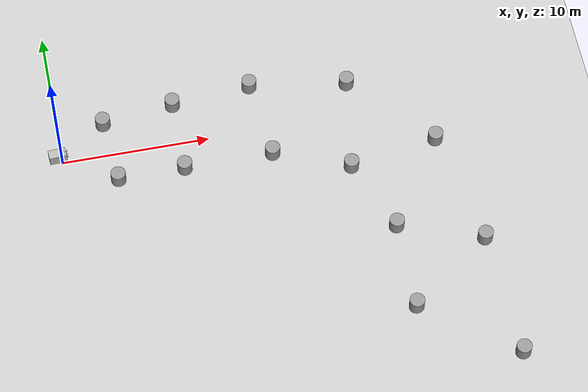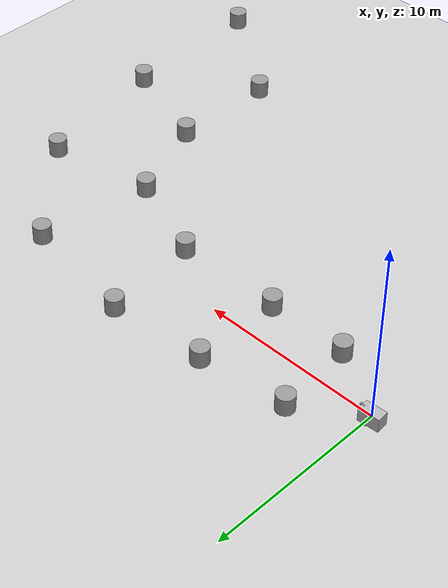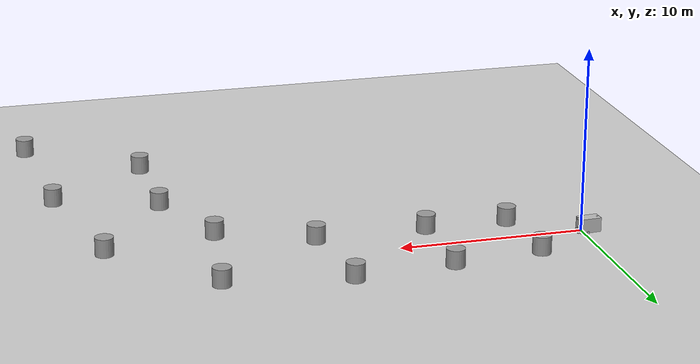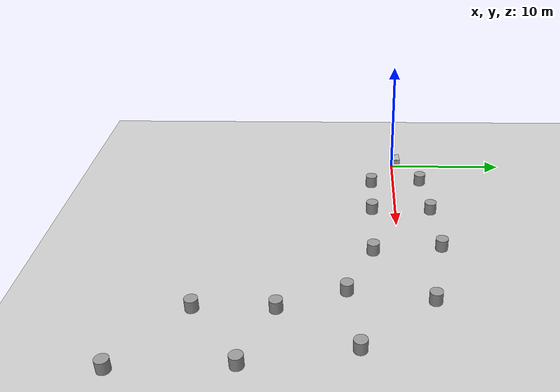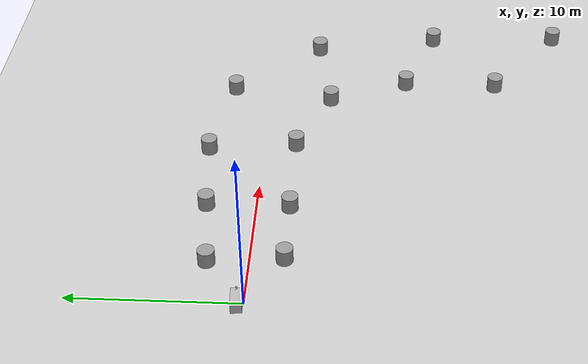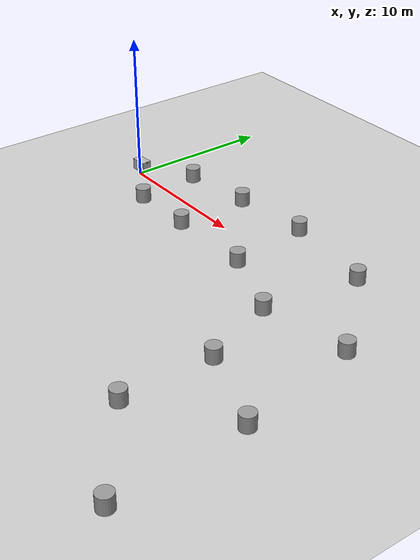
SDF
<sdf version="1.7">
 <world name="default">
  <light name="sun" type="directional">
   <pose>0 0 10 0 -0 0</pose>
   <diffuse>0.8 0.8 0.8 1</diffuse>
   <specular>0.2 0.2 0.2 1</specular>
   <attenuation>
    <range>1000</range>
    <constant>0.9</constant>
    <linear>0.01</linear>
    <quadratic>0.001</quadratic>
   </attenuation>
   <direction>-0.5 0.1 -0.9</direction>
   <spot><inner_angle>0</inner_angle><outer_angle>0</outer_angle><falloff>0</falloff></spot>
  </light>
  <model name="ground_plane">
   <static>1</static>
   <link name="link">
    <collision name="collision">
     <geometry><plane><normal>0 0 1</normal><size>100 100</size></plane></geometry>
     <surface>
      <contact><collide_bitmask>65535</collide_bitmask></contact>
      <friction><ode><mu>100</mu><mu2>50</mu2></ode></friction>
     </surface>
    </collision>
    <visual name="visual">
     <cast_shadows>0</cast_shadows>
     <geometry><plane><normal>0 0 1</normal><size>100 100</size></plane></geometry>
     <material>
      <script><uri>file://media/materials/scripts/gazebo.material</uri><name>Gazebo/Grey</name></script>
     </material>
    </visual>
   </link>
  </model>
  <gravity>0 0 -9.8</gravity>
  <magnetic_field>6e-06 2.3e-05 -4.2e-05</magnetic_field>
  <atmosphere type="adiabatic"/>
  <physics type="ode">
   <max_step_size>0.001</max_step_size>
   <real_time_factor>1</real_time_factor>
   <real_time_update_rate>1000</real_time_update_rate>
  </physics>
  <scene><ambient>0.4 0.4 0.4 1</ambient><background>0.7 0.7 0.7 1</background><shadows>1</shadows></scene>
  <spherical_coordinates>
   <surface_model>EARTH_WGS84</surface_model>
   <latitude_deg>0</latitude_deg>
   <longitude_deg>0</longitude_deg>
   <elevation>0</elevation>
   <heading_deg>0</heading_deg>
  </spherical_coordinates>
  <model name="hermes">
   <link name="base_link">
    <inertial>
     <pose>1.9e-05 0 0 0 -0 0</pose>
     <mass>1.00003</mass>
     <inertia>
      <ixx>0.0150053</ixx>
      <ixy>0</ixy>
      <ixz>-1.2148e-07</ixz>
      <iyy>0.037517</iyy>
      <iyz>0</iyz>
      <izz>0.0375151</izz>
     </inertia>
    </inertial>
    <collision name="base_link_collision"><geometry><box><size>0.6 0.3 0.3</size></box></geometry></collision>
    <collision name="base_link_fixed_joint_lump__camera_link_left_collision_1">
     <pose>0.630975 0.1 -0.180747 0 -0 0</pose>
     <geometry><box><size>0.1 0.1 0.1</size></box></geometry>
    </collision>
    <collision name="base_link_fixed_joint_lump__camera_link_right_collision_2">
     <pose>0.630975 -0.1 -0.180747 0 -0 0</pose>
     <geometry><box><size>0.1 0.1 0.1</size></box></geometry>
    </collision>
    <collision name="base_link_fixed_joint_lump__lidar_link_collision_3">
     <pose>0.630975 0 0.380747 0 -0 0</pose>
     <geometry><box><size>0.1 0.1 0.1</size></box></geometry>
    </collision>
    <visual name="base_link_visual"><geometry><box><size>1.16195 0.651 0.77596</size></box></geometry></visual>
    <visual name="base_link_fixed_joint_lump__camera_link_left_visual_1">
     <pose>0.630975 0.1 -0.180747 0 -0 0</pose>
     <geometry><box><size>0.1 0.1 0.1</size></box></geometry>
    </visual>
    <visual name="base_link_fixed_joint_lump__camera_link_right_visual_2">
     <pose>0.630975 -0.1 -0.180747 0 -0 0</pose>
     <geometry><box><size>0.1 0.1 0.1</size></box></geometry>
    </visual>
    <visual name="base_link_fixed_joint_lump__lidar_link_visual_3">
     <pose>0.630975 0 0.380747 0 -0 0</pose>
     <geometry><box><size>0.1 0.1 0.1</size></box></geometry>
    </visual>
    <sensor name="stereo_camera" type="multicamera">
     <update_rate>30</update_rate>
     <camera name="left">
      <horizontal_fov>1.39626</horizontal_fov>
      <image><width>800</width><height>800</height><format>R8G8B8</format></image>
      <clip><near>0.02</near><far>300</far></clip>
      <noise><type>gaussian</type><mean>0</mean><stddev>0.007</stddev></noise>
     </camera>
     <camera name="right">
      <pose>0 -0.07 0 0 -0 0</pose>
      <horizontal_fov>1.39626</horizontal_fov>
      <image><width>800</width><height>800</height><format>R8G8B8</format></image>
      <clip><near>0.02</near><far>300</far></clip>
      <noise><type>gaussian</type><mean>0</mean><stddev>0.007</stddev></noise>
     </camera>
     <plugin name="stereo_camera_controller" filename="libgazebo_ros_multicamera.so">
      <alwaysOn>1</alwaysOn>
      <updateRate>0.0</updateRate>
      <cameraName>stereo_camera</cameraName>
      <imageTopicName>image_raw</imageTopicName>
      <cameraInfoTopicName>camera_info</cameraInfoTopicName>
      <frameName>left_camera_optical_frame</frameName>
      <hackBaseline>0.07</hackBaseline>
      <distortionK1>0.0</distortionK1>
      <distortionK2>0.0</distortionK2>
      <distortionK3>0.0</distortionK3>
      <distortionT1>0.0</distortionT1>
      <distortionT2>0.0</distortionT2>
      <robotNamespace>/</robotNamespace>
     </plugin>
     <pose>0.630975 0 -0.180747 0 -0 0</pose>
    </sensor>
    <sensor name="head_lidar_sensor" type="ray">
     <visualize>1</visualize>
     <update_rate>25</update_rate>
     <ray>
      <scan>
       <horizontal>
        <samples>720</samples>
        <resolution>1</resolution>
        <min_angle>-2.35619</min_angle>
        <max_angle>2.35619</max_angle>
       </horizontal>
       <vertical><samples>1</samples><min_angle>0</min_angle><max_angle>0</max_angle></vertical>
      </scan>
      <range><min>0.5</min><max>20</max><resolution>0.001</resolution></range>
     </ray>
     <plugin name="gazebo_ros_head_hokuyo_controller" filename="libgazebo_ros_laser.so">
      <topicName>/scan</topicName>
      <frameName>lidar_link</frameName>
      <robotNamespace>/</robotNamespace>
     </plugin>
     <pose>0.630975 0 0.380747 0 -0 0</pose>
    </sensor>
   </link>
   <joint name="back_caster_joint" type="revolute">
    <pose relative_to="base_link">-0.491695 0 0 0 -0 0</pose>
    <parent>base_link</parent>
    <child>back_caster</child>
    <axis>
     <xyz>0 0 1</xyz>
     <limit><lower>-1e+16</lower><upper>1e+16</upper></limit>
     <dynamics><spring_reference>0</spring_reference><spring_stiffness>0</spring_stiffness></dynamics>
    </axis>
   </joint>
   <link name="back_caster">
    <pose relative_to="back_caster_joint">0 0 0 0 -0 0</pose>
    <inertial>
     <mass>0.1</mass>
     <inertia><ixx>0.00083</ixx><ixy>0</ixy><ixz>0</ixz><iyy>0.00083</iyy><iyz>0</iyz><izz>0.000167</izz></inertia>
    </inertial>
    <collision name="back_caster_collision">
     <geometry><box><size>0.1 0.1 0.77596</size></box></geometry>
    </collision>
    <visual name="back_caster_visual"><geometry><box><size>0.1 0.1 0.77596</size></box></geometry></visual>
   </link>
   <joint name="back_wheel_joint" type="revolute">
    <pose relative_to="back_caster">0.05 0 -0.38798 -1.5708 0 0</pose>
    <parent>back_caster</parent>
    <child>back_wheel</child>
    <axis>
     <xyz>0 0 1</xyz>
     <limit><lower>-1e+16</lower><upper>1e+16</upper></limit>
     <dynamics><spring_reference>0</spring_reference><spring_stiffness>0</spring_stiffness></dynamics>
    </axis>
   </joint>
   <link name="back_wheel">
    <pose relative_to="back_wheel_joint">0 0 0 0 -0 0</pose>
    <inertial>
     <mass>0.1</mass>
     <inertia>
      <ixx>5.1458e-05</ixx>
      <ixy>0</ixy>
      <ixz>0</ixz>
      <iyy>5.1458e-05</iyy>
      <iyz>0</iyz>
      <izz>6.125e-05</izz>
     </inertia>
    </inertial>
    <collision name="back_wheel_collision">
     <geometry><cylinder><length>0.05</length><radius>0.1</radius></cylinder></geometry>
    </collision>
    <visual name="back_wheel_visual">
     <geometry><cylinder><length>0.05</length><radius>0.1</radius></cylinder></geometry>
    </visual>
   </link>
   <joint name="front_caster_joint" type="revolute">
    <pose relative_to="base_link">0.491695 0 0 0 -0 0</pose>
    <parent>base_link</parent>
    <child>front_caster</child>
    <axis>
     <xyz>0 0 1</xyz>
     <limit><lower>-1e+16</lower><upper>1e+16</upper></limit>
     <dynamics><spring_reference>0</spring_reference><spring_stiffness>0</spring_stiffness></dynamics>
    </axis>
   </joint>
   <link name="front_caster">
    <pose relative_to="front_caster_joint">0 0 0 0 -0 0</pose>
    <inertial>
     <mass>0.1</mass>
     <inertia><ixx>0.00083</ixx><ixy>0</ixy><ixz>0</ixz><iyy>0.00083</iyy><iyz>0</iyz><izz>0.000167</izz></inertia>
    </inertial>
    <collision name="front_caster_collision">
     <geometry><box><size>0.1 0.1 0.77596</size></box></geometry>
    </collision>
    <visual name="front_caster_visual"><geometry><box><size>0.1 0.1 0.77596</size></box></geometry></visual>
   </link>
   <joint name="front_wheel_joint" type="revolute">
    <pose relative_to="front_caster">0.05 0 -0.38798 -1.5708 0 0</pose>
    <parent>front_caster</parent>
    <child>front_wheel</child>
    <axis>
     <xyz>0 0 1</xyz>
     <limit><lower>-1e+16</lower><upper>1e+16</upper></limit>
     <dynamics><spring_reference>0</spring_reference><spring_stiffness>0</spring_stiffness></dynamics>
    </axis>
   </joint>
   <link name="front_wheel">
    <pose relative_to="front_wheel_joint">0 0 0 0 -0 0</pose>
    <inertial>
     <mass>0.1</mass>
     <inertia>
      <ixx>5.1458e-05</ixx>
      <ixy>0</ixy>
      <ixz>0</ixz>
      <iyy>5.1458e-05</iyy>
      <iyz>0</iyz>
      <izz>6.125e-05</izz>
     </inertia>
    </inertial>
    <collision name="front_wheel_collision">
     <geometry><cylinder><length>0.05</length><radius>0.1</radius></cylinder></geometry>
    </collision>
    <visual name="front_wheel_visual">
     <geometry><cylinder><length>0.05</length><radius>0.1</radius></cylinder></geometry>
    </visual>
   </link>
   <joint name="left_wheel_joint" type="revolute">
    <pose relative_to="base_link">0.159795 0.3005 -0.38978 -1.5708 0 0</pose>
    <parent>base_link</parent>
    <child>left_wheel</child>
    <axis>
     <xyz>0 0 1</xyz>
     <limit><lower>-1e+16</lower><upper>1e+16</upper></limit>
     <dynamics><spring_reference>0</spring_reference><spring_stiffness>0</spring_stiffness></dynamics>
    </axis>
   </joint>
   <link name="left_wheel">
    <pose relative_to="left_wheel_joint">0 0 0 0 -0 0</pose>
    <inertial>
     <mass>0.1</mass>
     <inertia>
      <ixx>5.1458e-05</ixx>
      <ixy>0</ixy>
      <ixz>0</ixz>
      <iyy>5.1458e-05</iyy>
      <iyz>0</iyz>
      <izz>6.125e-05</izz>
     </inertia>
    </inertial>
    <collision name="left_wheel_collision">
     <geometry><cylinder><length>0.05</length><radius>0.1</radius></cylinder></geometry>
    </collision>
    <visual name="left_wheel_visual">
     <geometry><cylinder><length>0.05</length><radius>0.1</radius></cylinder></geometry>
    </visual>
   </link>
   <joint name="right_wheel_joint" type="revolute">
    <pose relative_to="base_link">0.159795 -0.3005 -0.38798 -1.5708 0 0</pose>
    <parent>base_link</parent>
    <child>right_wheel</child>
    <axis>
     <xyz>0 0 1</xyz>
     <limit><lower>-1e+16</lower><upper>1e+16</upper></limit>
     <dynamics><spring_reference>0</spring_reference><spring_stiffness>0</spring_stiffness></dynamics>
    </axis>
   </joint>
   <link name="right_wheel">
    <pose relative_to="right_wheel_joint">0 0 0 0 -0 0</pose>
    <inertial>
     <mass>0.1</mass>
     <inertia>
      <ixx>5.1458e-05</ixx>
      <ixy>0</ixy>
      <ixz>0</ixz>
      <iyy>5.1458e-05</iyy>
      <iyz>0</iyz>
      <izz>6.125e-05</izz>
     </inertia>
    </inertial>
    <collision name="right_wheel_collision">
     <geometry><cylinder><length>0.05</length><radius>0.1</radius></cylinder></geometry>
    </collision>
    <visual name="right_wheel_visual">
     <geometry><cylinder><length>0.05</length><radius>0.1</radius></cylinder></geometry>
    </visual>
   </link>
   <static>0</static>
   <plugin name="differential_drive_controller" filename="libgazebo_ros_diff_drive.so">
    <leftJoint>left_wheel_joint</leftJoint>
    <odometryTopic>odom</odometryTopic>
    <odometryFrame>odom</odometryFrame>
    <publishWheelTF>0</publishWheelTF>
    <publishOdomTF>1</publishOdomTF>
    <wheelTorque>5</wheelTorque>
    <wheelAcceleration>0</wheelAcceleration>
    <updateRate>100</updateRate>
    <odometrySource>world</odometrySource>
    <publishTf>1</publishTf>
    <rosDebugLevel>na</rosDebugLevel>
    <rightJoint>right_wheel_joint</rightJoint>
    <robotBaseFrame>base_link</robotBaseFrame>
    <wheelSeparation>0.25</wheelSeparation>
    <wheelDiameter>0.07</wheelDiameter>
    <publishWheelJointState>1</publishWheelJointState>
    <commandTopic>cmd_vel</commandTopic>
    <robotBaseFrame>base_link</robotBaseFrame>
    <robotNamespace>/</robotNamespace>
   </plugin>
   <pose>-0.25974 0.350169 0.488716 0.002993 -0.001452 0.065982</pose>
  </model>
  <model name="unit_cylinder">
   <pose>3.12631 2.40975 0.499992 -3e-06 3e-06 0</pose>
   <link name="link">
    <inertial>
     <mass>1</mass>
     <inertia><ixx>0.145833</ixx><ixy>0</ixy><ixz>0</ixz><iyy>0.145833</iyy><iyz>0</iyz><izz>0.125</izz></inertia>
    </inertial>
    <collision name="collision">
     <geometry><cylinder><radius>0.5</radius><length>1</length></cylinder></geometry>
    </collision>
    <visual name="visual">
     <geometry><cylinder><radius>0.5</radius><length>1</length></cylinder></geometry>
     <material>
      <script><name>Gazebo/Grey</name><uri>file://media/materials/scripts/gazebo.material</uri></script>
     </material>
    </visual>
   </link>
  </model>
  <model name="unit_cylinder_clone">
   <pose>3.49591 -2 0.499992 -3e-06 3e-06 0</pose>
   <link name="link">
    <inertial>
     <mass>1</mass>
     <inertia><ixx>0.145833</ixx><ixy>0</ixy><ixz>0</ixz><iyy>0.145833</iyy><iyz>0</iyz><izz>0.125</izz></inertia>
    </inertial>
    <collision name="collision">
     <geometry><cylinder><radius>0.5</radius><length>1</length></cylinder></geometry>
    </collision>
    <visual name="visual">
     <geometry><cylinder><radius>0.5</radius><length>1</length></cylinder></geometry>
     <material>
      <script><name>Gazebo/Grey</name><uri>file://media/materials/scripts/gazebo.material</uri></script>
     </material>
    </visual>
   </link>
  </model>
  <model name="unit_cylinder_clone_0">
   <pose>8 3 0.499992 -3e-06 3e-06 0</pose>
   <link name="link">
    <inertial>
     <mass>1</mass>
     <inertia><ixx>0.145833</ixx><ixy>0</ixy><ixz>0</ixz><iyy>0.145833</iyy><iyz>0</iyz><izz>0.125</izz></inertia>
    </inertial>
    <collision name="collision">
     <geometry><cylinder><radius>0.5</radius><length>1</length></cylinder></geometry>
    </collision>
    <visual name="visual">
     <geometry><cylinder><radius>0.5</radius><length>1</length></cylinder></geometry>
     <material>
      <script><name>Gazebo/Grey</name><uri>file://media/materials/scripts/gazebo.material</uri></script>
     </material>
    </visual>
   </link>
  </model>
  <model name="unit_cylinder_clone_1">
   <pose>8 -2 0.499998 3e-06 -4e-06 0</pose>
   <link name="link">
    <inertial>
     <mass>1</mass>
     <inertia><ixx>0.145833</ixx><ixy>0</ixy><ixz>0</ixz><iyy>0.145833</iyy><iyz>0</iyz><izz>0.125</izz></inertia>
    </inertial>
    <collision name="collision">
     <geometry><cylinder><radius>0.5</radius><length>1</length></cylinder></geometry>
    </collision>
    <visual name="visual">
     <geometry><cylinder><radius>0.5</radius><length>1</length></cylinder></geometry>
     <material>
      <script><name>Gazebo/Grey</name><uri>file://media/materials/scripts/gazebo.material</uri></script>
     </material>
    </visual>
   </link>
  </model>
  <model name="unit_cylinder_clone_2">
   <pose>13.4033 3.46744 0.499992 -3e-06 4e-06 0</pose>
   <link name="link">
    <inertial>
     <mass>1</mass>
     <inertia><ixx>0.145833</ixx><ixy>0</ixy><ixz>0</ixz><iyy>0.145833</iyy><iyz>0</iyz><izz>0.125</izz></inertia>
    </inertial>
    <collision name="collision">
     <geometry><cylinder><radius>0.5</radius><length>1</length></cylinder></geometry>
    </collision>
    <visual name="visual">
     <geometry><cylinder><radius>0.5</radius><length>1</length></cylinder></geometry>
     <material>
      <script><name>Gazebo/Grey</name><uri>file://media/materials/scripts/gazebo.material</uri></script>
     </material>
    </visual>
   </link>
  </model>
  <model name="unit_cylinder_clone_3">
   <pose>14 -2 0.499998 3e-06 -4e-06 0</pose>
   <link name="link">
    <inertial>
     <mass>1</mass>
     <inertia><ixx>0.145833</ixx><ixy>0</ixy><ixz>0</ixz><iyy>0.145833</iyy><iyz>0</iyz><izz>0.125</izz></inertia>
    </inertial>
    <collision name="collision">
     <geometry><cylinder><radius>0.5</radius><length>1</length></cylinder></geometry>
    </collision>
    <visual name="visual">
     <geometry><cylinder><radius>0.5</radius><length>1</length></cylinder></geometry>
     <material>
      <script><name>Gazebo/Grey</name><uri>file://media/materials/scripts/gazebo.material</uri></script>
     </material>
    </visual>
   </link>
  </model>
  <model name="unit_cylinder_clone_4">
   <pose>20 2.42978 0.499992 -3e-06 4e-06 0</pose>
   <link name="link">
    <inertial>
     <mass>1</mass>
     <inertia><ixx>0.145833</ixx><ixy>0</ixy><ixz>0</ixz><iyy>0.145833</iyy><iyz>0</iyz><izz>0.125</izz></inertia>
    </inertial>
    <collision name="collision">
     <geometry><cylinder><radius>0.5</radius><length>1</length></cylinder></geometry>
    </collision>
    <visual name="visual">
     <geometry><cylinder><radius>0.5</radius><length>1</length></cylinder></geometry>
     <material>
      <script><name>Gazebo/Grey</name><uri>file://media/materials/scripts/gazebo.material</uri></script>
     </material>
    </visual>
   </link>
  </model>
  <model name="unit_cylinder_clone_5">
   <pose>19 -4 0.499998 3e-06 4e-06 -0</pose>
   <link name="link">
    <inertial>
     <mass>1</mass>
     <inertia><ixx>0.145833</ixx><ixy>0</ixy><ixz>0</ixz><iyy>0.145833</iyy><iyz>0</iyz><izz>0.125</izz></inertia>
    </inertial>
    <collision name="collision">
     <geometry><cylinder><radius>0.5</radius><length>1</length></cylinder></geometry>
    </collision>
    <visual name="visual">
     <geometry><cylinder><radius>0.5</radius><length>1</length></cylinder></geometry>
     <material>
      <script><name>Gazebo/Grey</name><uri>file://media/materials/scripts/gazebo.material</uri></script>
     </material>
    </visual>
   </link>
  </model>
  <model name="unit_cylinder_clone_6">
   <pose>21 -9 0.499993 -3e-06 -3e-06 0</pose>
   <link name="link">
    <inertial>
     <mass>1</mass>
     <inertia><ixx>0.145833</ixx><ixy>0</ixy><ixz>0</ixz><iyy>0.145833</iyy><iyz>0</iyz><izz>0.125</izz></inertia>
    </inertial>
    <collision name="collision">
     <geometry><cylinder><radius>0.5</radius><length>1</length></cylinder></geometry>
    </collision>
    <visual name="visual">
     <geometry><cylinder><radius>0.5</radius><length>1</length></cylinder></geometry>
     <material>
      <script><name>Gazebo/Grey</name><uri>file://media/materials/scripts/gazebo.material</uri></script>
     </material>
    </visual>
   </link>
  </model>
  <model name="unit_cylinder_clone_7">
   <pose>25 -3 0.499993 -3e-06 -4e-06 -0</pose>
   <link name="link">
    <inertial>
     <mass>1</mass>
     <inertia><ixx>0.145833</ixx><ixy>0</ixy><ixz>0</ixz><iyy>0.145833</iyy><iyz>0</iyz><izz>0.125</izz></inertia>
    </inertial>
    <collision name="collision">
     <geometry><cylinder><radius>0.5</radius><length>1</length></cylinder></geometry>
    </collision>
    <visual name="visual">
     <geometry><cylinder><radius>0.5</radius><length>1</length></cylinder></geometry>
     <material>
      <script><name>Gazebo/Grey</name><uri>file://media/materials/scripts/gazebo.material</uri></script>
     </material>
    </visual>
   </link>
  </model>
  <model name="unit_cylinder_clone_8">
   <pose>21 -15 0.499993 -3e-06 -4e-06 -0</pose>
   <link name="link">
    <inertial>
     <mass>1</mass>
     <inertia><ixx>0.145833</ixx><ixy>0</ixy><ixz>0</ixz><iyy>0.145833</iyy><iyz>0</iyz><izz>0.125</izz></inertia>
    </inertial>
    <collision name="collision">
     <geometry><cylinder><radius>0.5</radius><length>1</length></cylinder></geometry>
    </collision>
    <visual name="visual">
     <geometry><cylinder><radius>0.5</radius><length>1</length></cylinder></geometry>
     <material>
      <script><name>Gazebo/Grey</name><uri>file://media/materials/scripts/gazebo.material</uri></script>
     </material>
    </visual>
   </link>
  </model>
  <model name="unit_cylinder_clone_9">
   <pose>26.5334 -11 0.499993 -3e-06 -4e-06 -0</pose>
   <link name="link">
    <inertial>
     <mass>1</mass>
     <inertia><ixx>0.145833</ixx><ixy>0</ixy><ixz>0</ixz><iyy>0.145833</iyy><iyz>0</iyz><izz>0.125</izz></inertia>
    </inertial>
    <collision name="collision">
     <geometry><cylinder><radius>0.5</radius><length>1</length></cylinder></geometry>
    </collision>
    <visual name="visual">
     <geometry><cylinder><radius>0.5</radius><length>1</length></cylinder></geometry>
     <material>
      <script><name>Gazebo/Grey</name><uri>file://media/materials/scripts/gazebo.material</uri></script>
     </material>
    </visual>
   </link>
  </model>
  <model name="unit_cylinder_clone_10">
   <pose>27 -19.4874 0.499997 3e-06 4e-06 -0</pose>
   <link name="link">
    <inertial>
     <mass>1</mass>
     <inertia><ixx>0.145833</ixx><ixy>0</ixy><ixz>0</ixz><iyy>0.145833</iyy><iyz>0</iyz><izz>0.125</izz></inertia>
    </inertial>
    <collision name="collision">
     <geometry><cylinder><radius>0.5</radius><length>1</length></cylinder></geometry>
    </collision>
    <visual name="visual">
     <geometry><cylinder><radius>0.5</radius><length>1</length></cylinder></geometry>
     <material>
      <script><name>Gazebo/Grey</name><uri>file://media/materials/scripts/gazebo.material</uri></script>
     </material>
    </visual>
   </link>
  </model>
 </world>
</sdf>
